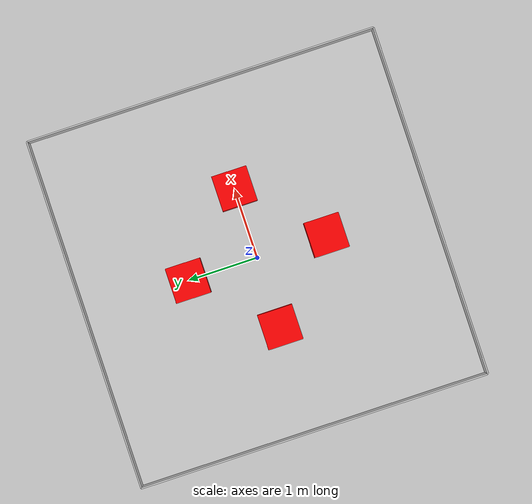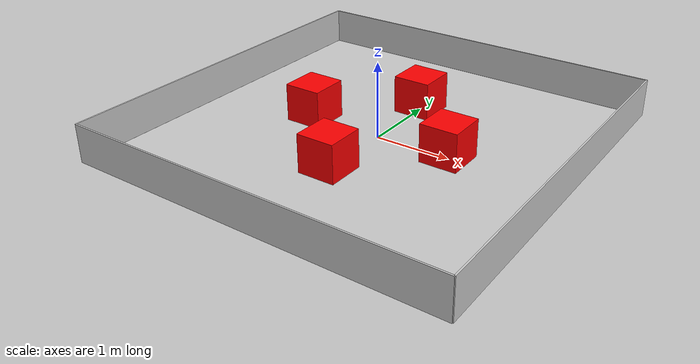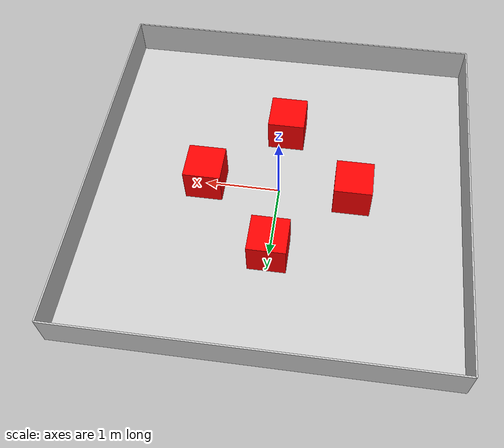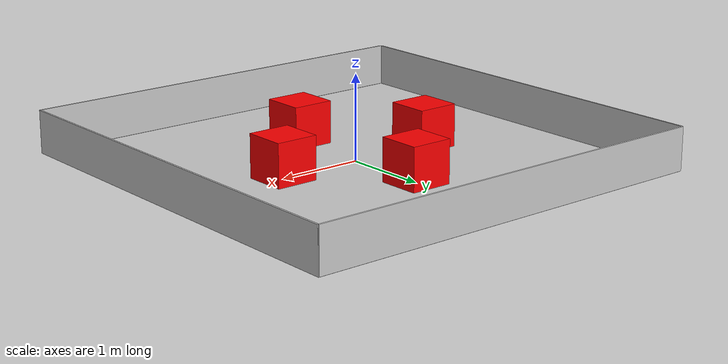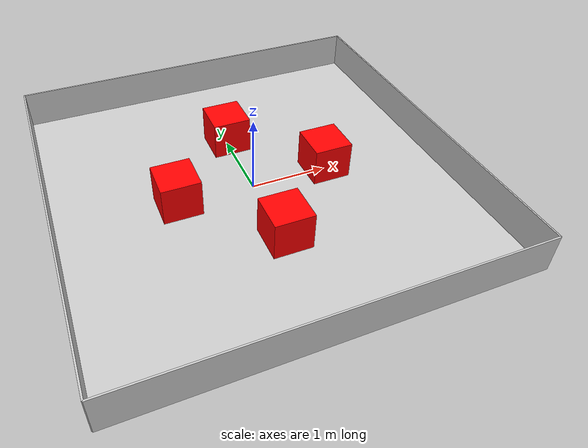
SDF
<?xml version="1.0" ?>
<sdf version="1.8">
    <world name="diff_drive_world">

        <scene>
            <grid>false</grid>
        </scene>

        <physics name="1ms" type="ignored">
            <max_step_size>0.001</max_step_size>
            <real_time_factor>1.0</real_time_factor>
        </physics>

        <!-- PLUGINS -->
        <plugin
            filename="gz-sim-physics-system"
            name="gz::sim::systems::Physics">
        </plugin>
        <plugin
            filename="gz-sim-user-commands-system"
            name="gz::sim::systems::UserCommands">
        </plugin>
        <plugin
            filename="gz-sim-scene-broadcaster-system"
            name="gz::sim::systems::SceneBroadcaster">
        </plugin>
        <plugin
            filename="gz-sim-sensors-system"
            name="gz::sim::systems::Sensors">
            <render_engine>ogre2</render_engine>
        </plugin>

        <light type="directional" name="sun">
            <cast_shadows>true</cast_shadows>
            <pose>0 0 10 0 0 0</pose>
            <diffuse>0.8 0.8 0.8 1</diffuse>
            <specular>0.2 0.2 0.2 1</specular>
            <attenuation>
                <range>1000</range>
                <constant>0.9</constant>
                <linear>0.01</linear>
                <quadratic>0.001</quadratic>
            </attenuation>
            <direction>-0.5 0.1 -0.9</direction>
        </light>

        <!-- MODELS -->
        <model name="arena">
            <static>true</static>
            <link name="floor">
                <collision name="collision">
                    <geometry>
                        <plane>
                            <normal>0 0 1</normal>
                        </plane>
                    </geometry>
                </collision>
                <visual name="visual">
                    <geometry>
                        <plane>
                            <normal>0 0 1</normal>
                            <size>5 5</size>
                        </plane>
                    </geometry>
                    <material>
                        <ambient>0.8 0.8 0.8 1</ambient>
                        <diffuse>0.8 0.8 0.8 1</diffuse>
                        <specular>0.8 0.8 0.8 1</specular>
                    </material>
                </visual>
            </link>

            <link name="w1">
                <pose relative_to="floor">0 2.5 0.25 0 0 0</pose>
                <collision name="collision">
                    <geometry>
                        <box>
                            <size>5 0.02 0.5</size>
                        </box>
                    </geometry>
                </collision>
                <visual name="visual">
                    <geometry>
                        <box>
                            <size>5 0.02 0.5</size>
                        </box>
                    </geometry>
                    <material>
                        <ambient>0.8 0.8 0.8 1</ambient>
                        <diffuse>0.8 0.8 0.8 1</diffuse>
                        <specular>0.8 0.8 0.8 1</specular>
                    </material>
                </visual>
            </link>
            <link name="w2">
                <pose relative_to="floor">0 -2.5 0.25 0 0 0</pose>
                <collision name="collision">
                    <geometry>
                        <box>
                            <size>5 0.02 0.5</size>
                        </box>
                    </geometry>
                </collision>
                <visual name="visual">
                    <geometry>
                        <box>
                            <size>5 0.02 0.5</size>
                        </box>
                    </geometry>
                    <material>
                        <ambient>0.8 0.8 0.8 1</ambient>
                        <diffuse>0.8 0.8 0.8 1</diffuse>
                        <specular>0.8 0.8 0.8 1</specular>
                    </material>
                </visual>
            </link>
            <link name="w3">
                <pose relative_to="floor">2.5 0 0.25 0 0 0</pose>
                <collision name="collision">
                    <geometry>
                        <box>
                            <size>0.02 5 0.5</size>
                        </box>
                    </geometry>
                </collision>
                <visual name="visual">
                    <geometry>
                        <box>
                            <size>0.02 5 0.5</size>
                        </box>
                    </geometry>
                    <material>
                        <ambient>0.8 0.8 0.8 1</ambient>
                        <diffuse>0.8 0.8 0.8 1</diffuse>
                        <specular>0.8 0.8 0.8 1</specular>
                    </material>
                </visual>
            </link>
            <link name="w4">
                <pose relative_to="floor">-2.5 0 0.25 0 0 0</pose>
                <collision name="collision">
                    <geometry>
                        <box>
                            <size>0.02 5 0.5</size>
                        </box>
                    </geometry>
                </collision>
                <visual name="visual">
                    <geometry>
                        <box>
                            <size>0.02 5 0.5</size>
                        </box>
                    </geometry>
                    <material>
                        <ambient>0.8 0.8 0.8 1</ambient>
                        <diffuse>0.8 0.8 0.8 1</diffuse>
                        <specular>0.8 0.8 0.8 1</specular>
                    </material>
                </visual>
            </link>
        </model>

        <!-- Obstacles -->
        <model name="box1">
            <pose>0 -1 0.25 0 0 0</pose>
            <link name="box_link">
                <inertial>
                <inertia>
                    <ixx>1</ixx>
                    <ixy>0</ixy>
                    <ixz>0</ixz>
                    <iyy>1</iyy>
                    <iyz>0</iyz>
                    <izz>1</izz>
                </inertia>
                <mass>1.0</mass>
                </inertial>
                <collision name="box_collision">
                    <geometry>
                        <box>
                            <size>0.5 0.5 0.5</size>
                        </box>
                    </geometry>
                </collision>
                <visual name="box_visual">
                    <geometry>
                        <box>
                            <size>0.5 0.5 0.5</size>
                        </box>
                    </geometry>
                <material>
                    <ambient>1 0 0 1</ambient>
                    <diffuse>1 0 0 1</diffuse>
                    <specular>1 0 0 1</specular>
                </material>
                </visual>
            </link>
        </model>

        <model name="box2">
            <pose>0 1 0.25 0 0 0</pose>
            <link name="box_link">
                <inertial>
                <inertia>
                    <ixx>1</ixx>
                    <ixy>0</ixy>
                    <ixz>0</ixz>
                    <iyy>1</iyy>
                    <iyz>0</iyz>
                    <izz>1</izz>
                </inertia>
                <mass>1.0</mass>
                </inertial>
                <collision name="box_collision">
                    <geometry>
                        <box>
                            <size>0.5 0.5 0.5</size>
                        </box>
                    </geometry>
                </collision>
                <visual name="box_visual">
                    <geometry>
                        <box>
                            <size>0.5 0.5 0.5</size>
                        </box>
                    </geometry>
                <material>
                    <ambient>1 0 0 1</ambient>
                    <diffuse>1 0 0 1</diffuse>
                    <specular>1 0 0 1</specular>
                </material>
                </visual>
            </link>
        </model>

        <model name="box3">
            <pose>-1 0 0.25 0 0 0</pose>
            <link name="box_link">
                <inertial>
                <inertia>
                    <ixx>1</ixx>
                    <ixy>0</ixy>
                    <ixz>0</ixz>
                    <iyy>1</iyy>
                    <iyz>0</iyz>
                    <izz>1</izz>
                </inertia>
                <mass>1.0</mass>
                </inertial>
                <collision name="box_collision">
                    <geometry>
                        <box>
                            <size>0.5 0.5 0.5</size>
                        </box>
                    </geometry>
                </collision>
                <visual name="box_visual">
                    <geometry>
                        <box>
                            <size>0.5 0.5 0.5</size>
                        </box>
                    </geometry>
                <material>
                    <ambient>1 0 0 1</ambient>
                    <diffuse>1 0 0 1</diffuse>
                    <specular>1 0 0 1</specular>
                </material>
                </visual>
            </link>
        </model>

        <model name="box4">
            <pose>1 0 0.25 0 0 0</pose>
            <link name="box_link">
                <inertial>
                <inertia>
                    <ixx>1</ixx>
                    <ixy>0</ixy>
                    <ixz>0</ixz>
                    <iyy>1</iyy>
                    <iyz>0</iyz>
                    <izz>1</izz>
                </inertia>
                <mass>1.0</mass>
                </inertial>
                <collision name="box_collision">
                    <geometry>
                        <box>
                            <size>0.5 0.5 0.5</size>
                        </box>
                    </geometry>
                </collision>
                <visual name="box_visual">
                    <geometry>
                        <box>
                            <size>0.5 0.5 0.5</size>
                        </box>
                    </geometry>
                <material>
                    <ambient>1 0 0 1</ambient>
                    <diffuse>1 0 0 1</diffuse>
                    <specular>1 0 0 1</specular>
                </material>
                </visual>
            </link>
        </model>

    </world>
</sdf>
